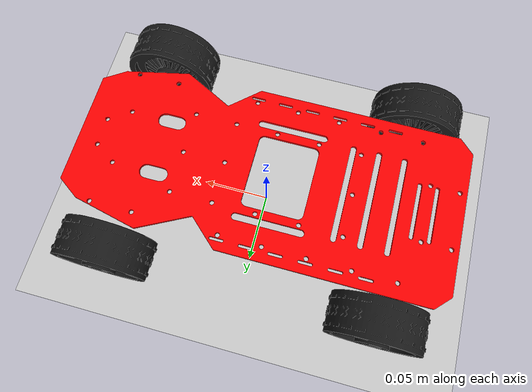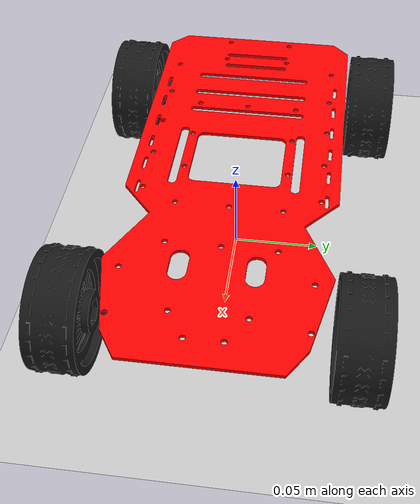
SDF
<?xml version="1.0" ?>
<sdf version="1.6">
  <world name="ackermann_world">
    <plugin filename="gz-sim-physics-system" name="gz::sim::systems::Physics"/>
    <plugin filename="gz-sim-user-commands-system" name="gz::sim::systems::UserCommands"/>
    <plugin filename="gz-sim-scene-broadcaster-system" name="gz::sim::systems::SceneBroadcaster"/>

    <physics type="ode">
      <max_step_size>0.001</max_step_size>
      <real_time_factor>1</real_time_factor>
      <ode>
        <solver>
          <type>quick</type>
          <iters>150</iters>
        </solver>
      </ode>
    </physics>

    <scene>
      <ambient>0.4 0.4 0.4 1</ambient>
      <background>0.7 0.7 0.7 1</background>
      <shadows>true</shadows>
    </scene>

    <light name="sun" type="directional">
      <cast_shadows>true</cast_shadows>
      <pose>0 0 10 0 0 0</pose>
      <direction>-0.5 0.1 -0.9</direction>
    </light>

    <model name="ground_plane">
      <static>true</static>
      <link name="link">
        <collision name="collision">
          <geometry><plane><normal>0 0 1</normal><size>100 100</size></plane></geometry>
          <surface><friction><ode><mu>50</mu><mu2>50</mu2></ode></friction></surface>
        </collision>
        <visual name="visual">
          <geometry><plane><normal>0 0 1</normal><size>100 100</size></plane></geometry>
          <material><ambient>0.8 0.8 0.8 1</ambient><diffuse>0.8 0.8 0.8 1</diffuse></material>
        </visual>
      </link>
    </model>

    <model name="ackermann_robot">
      <pose>0 0 0.055908 0 0 0</pose>

      <link name="base_link">
        <inertial>
          <pose>7.8263E-05 3.6651E-05 0.0068167 0 0 0</pose>
          <mass>0.080358</mass>
          <inertia>
            <ixx>9.9204E-05</ixx><ixy>3.2009E-08</ixy><ixz>1.1586E-05</ixz>
            <iyy>0.00029246</iyy><iyz>-2.9289E-08</iyz><izz>0.00036760</izz>
          </inertia>
        </inertial>
        <visual name="visual">
          <pose>0 0 0 0 0 1.5708</pose> <geometry>
            <mesh>
              <uri>file:///home/mohana/robot_ws/install/ackermann_robot/share/ackermann_robot/meshes/chassis_visual.stl</uri>
              <scale>0.001 0.001 0.001</scale>
            </mesh>
          </geometry>
          <material>
            <ambient>1.0 0.0 0.0 1.0</ambient>
            <diffuse>1.0 0.0 0.0 1.0</diffuse>
            <specular>0.5 0.5 0.5 1.0</specular>
          </material>
        </visual>
        <collision name="collision">
          <pose>0 0 0 0 0 1.5708</pose>
          <geometry>
            <mesh>
              <uri>file:///home/mohana/robot_ws/install/ackermann_robot/share/ackermann_robot/meshes/chassis_visual.stl</uri>
              <scale>0.001 0.001 0.001</scale>
            </mesh>
          </geometry>
        </collision>
      </link>

      <link name="fl_steer_link">
        <pose>0.095 0.076 -0.018408 0 0 0</pose>
        <inertial><mass>0.01</mass><inertia><ixx>1e-5</ixx><ixy>0</ixy><ixz>0</ixz><iyy>1e-5</iyy><iyz>0</iyz><izz>1e-5</izz></inertia></inertial>
      </link>
      <link name="fl_wheel_link">
        <pose>0.095 0.076 -0.018408 1.5708 0 0</pose>
        <inertial>
          <pose>6.2319E-05 -0.005746 2.9859E-05 0 0 0</pose>
          <mass>0.03787</mass>
          <inertia><ixx>3.6767E-06</ixx><ixy>-1.4218E-09</ixy><ixz>-1.2032E-08</ixz><iyy>5.8100E-06</iyy><iyz>1.7232E-09</iyz><izz>3.6793E-06</izz></inertia>
        </inertial>
        <visual name="v">
          <geometry>
            <mesh>
              <uri>file:///home/mohana/robot_ws/install/ackermann_robot/share/ackermann_robot/meshes/wheel_visual.stl</uri>
              <scale>0.001 0.001 0.001</scale>
            </mesh>
          </geometry>
          <material>
            <ambient>0.1 0.1 0.1 1.0</ambient>
            <diffuse>0.1 0.1 0.1 1.0</diffuse>
          </material>
        </visual>
        <collision name="c">
          <geometry><cylinder><radius>0.036</radius><length>0.03</length></cylinder></geometry>
          <surface><friction><ode><mu>1.5</mu><mu2>1.5</mu2></ode></friction></surface>
        </collision>
      </link>

      <link name="fr_steer_link">
        <pose>0.095 -0.076 -0.018408 0 0 0</pose>
        <inertial><mass>0.01</mass><inertia><ixx>1e-5</ixx><ixy>0</ixy><ixz>0</ixz><iyy>1e-5</iyy><iyz>0</iyz><izz>1e-5</izz></inertia></inertial>
      </link>
      <link name="fr_wheel_link">
        <pose>0.095 -0.076 -0.018408 1.5708 0 0</pose>
        <inertial>
          <pose>6.2319E-05 -0.005746 2.9859E-05 0 0 0</pose>
          <mass>0.03787</mass>
          <inertia><ixx>3.6767E-06</ixx><ixy>-1.4218E-09</ixy><ixz>-1.2032E-08</ixz><iyy>5.8100E-06</iyy><iyz>1.7232E-09</iyz><izz>3.6793E-06</izz></inertia>
        </inertial>
        <visual name="v">
          <geometry>
            <mesh>
              <uri>file:///home/mohana/robot_ws/install/ackermann_robot/share/ackermann_robot/meshes/wheel_visual.stl</uri>
              <scale>0.001 0.001 0.001</scale>
            </mesh>
          </geometry>
          <material>
            <ambient>0.1 0.1 0.1 1.0</ambient>
            <diffuse>0.1 0.1 0.1 1.0</diffuse>
          </material>
        </visual>
        <collision name="c">
          <geometry><cylinder><radius>0.036</radius><length>0.03</length></cylinder></geometry>
          <surface><friction><ode><mu>1.5</mu><mu2>1.5</mu2></ode></friction></surface>
        </collision>
      </link>

      <link name="rl_wheel_link">
        <pose>-0.095 0.076 -0.018408 1.5708 0 0</pose>
        <inertial>
          <pose>6.2319E-05 -0.005746 2.9859E-05 0 0 0</pose>
          <mass>0.03787</mass>
          <inertia><ixx>3.6767E-06</ixx><ixy>-1.4218E-09</ixy><ixz>-1.2032E-08</ixz><iyy>5.8100E-06</iyy><iyz>1.7232E-09</iyz><izz>3.6793E-06</izz></inertia>
        </inertial>
        <visual name="v">
          <geometry>
            <mesh>
              <uri>file:///home/mohana/robot_ws/install/ackermann_robot/share/ackermann_robot/meshes/wheel_visual.stl</uri>
              <scale>0.001 0.001 0.001</scale>
            </mesh>
          </geometry>
          <material>
            <ambient>0.1 0.1 0.1 1.0</ambient>
            <diffuse>0.1 0.1 0.1 1.0</diffuse>
          </material>
        </visual>
        <collision name="c">
          <geometry><cylinder><radius>0.036</radius><length>0.03</length></cylinder></geometry>
          <surface><friction><ode><mu>1.5</mu><mu2>1.5</mu2></ode></friction></surface>
        </collision>
      </link>

      <link name="rr_wheel_link">
        <pose>-0.095 -0.076 -0.018408 1.5708 0 0</pose>
        <inertial>
          <pose>6.2319E-05 -0.005746 2.9859E-05 0 0 0</pose>
          <mass>0.03787</mass>
          <inertia><ixx>3.6767E-06</ixx><ixy>-1.4218E-09</ixy><ixz>-1.2032E-08</ixz><iyy>5.8100E-06</iyy><iyz>1.7232E-09</iyz><izz>3.6793E-06</izz></inertia>
        </inertial>
        <visual name="v">
          <geometry>
            <mesh>
              <uri>file:///home/mohana/robot_ws/install/ackermann_robot/share/ackermann_robot/meshes/wheel_visual.stl</uri>
              <scale>0.001 0.001 0.001</scale>
            </mesh>
          </geometry>
          <material>
            <ambient>0.1 0.1 0.1 1.0</ambient>
            <diffuse>0.1 0.1 0.1 1.0</diffuse>
          </material>
        </visual>
        <collision name="c">
          <geometry><cylinder><radius>0.036</radius><length>0.03</length></cylinder></geometry>
          <surface><friction><ode><mu>1.5</mu><mu2>1.5</mu2></ode></friction></surface>
        </collision>
      </link>

      <joint name="front_left_steer_joint" type="revolute">
        <parent>base_link</parent><child>fl_steer_link</child>
        <axis><xyz>0 0 1</xyz><limit><lower>-0.6</lower><upper>0.6</upper><effort>1e6</effort><velocity>10</velocity></limit></axis>
      </joint>
      <joint name="front_left_wheel_joint" type="revolute">
        <parent>fl_steer_link</parent><child>fl_wheel_link</child>
        <axis><xyz>0 0 -1</xyz><limit><effort>1e6</effort><velocity>100</velocity></limit></axis>
      </joint>
      <joint name="front_right_steer_joint" type="revolute">
        <parent>base_link</parent><child>fr_steer_link</child>
        <axis><xyz>0 0 1</xyz><limit><lower>-0.6</lower><upper>0.6</upper><effort>1e6</effort><velocity>10</velocity></limit></axis>
      </joint>
      <joint name="front_right_wheel_joint" type="revolute">
        <parent>fr_steer_link</parent><child>fr_wheel_link</child>
        <axis><xyz>0 0 -1</xyz><limit><effort>1e6</effort><velocity>100</velocity></limit></axis>
      </joint>
      <joint name="rear_left_wheel_joint" type="revolute">
        <parent>base_link</parent><child>rl_wheel_link</child>
        <axis><xyz>0 0 -1</xyz><limit><effort>1e6</effort><velocity>100</velocity></limit></axis>
      </joint>
      <joint name="rear_right_wheel_joint" type="revolute">
        <parent>base_link</parent><child>rr_wheel_link</child>
        <axis><xyz>0 0 -1</xyz><limit><effort>1e6</effort><velocity>100</velocity></limit></axis>
      </joint>

      <plugin filename="gz-sim-ackermann-steering-system" name="gz::sim::systems::AckermannSteering">
        <left_steering_joint>front_left_steer_joint</left_steering_joint>
        <right_steering_joint>front_right_steer_joint</right_steering_joint>
        <left_joint>front_left_wheel_joint</left_joint>
        <left_joint>rear_left_wheel_joint</left_joint>
        <right_joint>front_right_wheel_joint</right_joint>
        <right_joint>rear_right_wheel_joint</right_joint>
        <wheel_base>0.19</wheel_base>
        <wheel_separation>0.152</wheel_separation>
        <wheel_radius>0.036</wheel_radius>
      </plugin>
    </model>
  </world>
</sdf>
